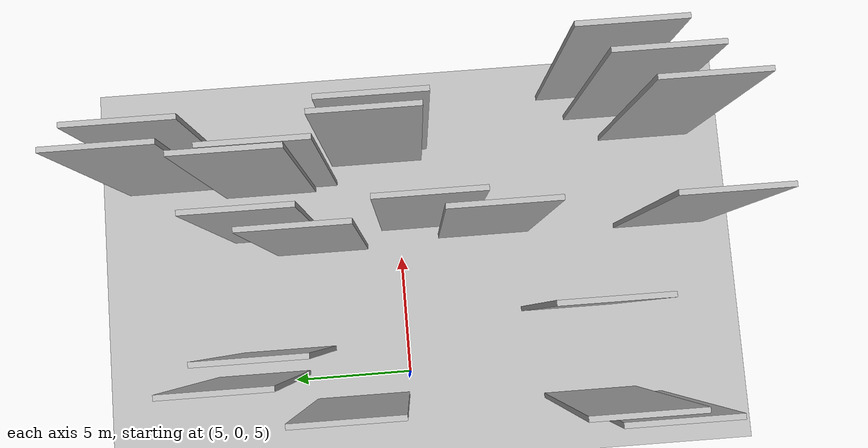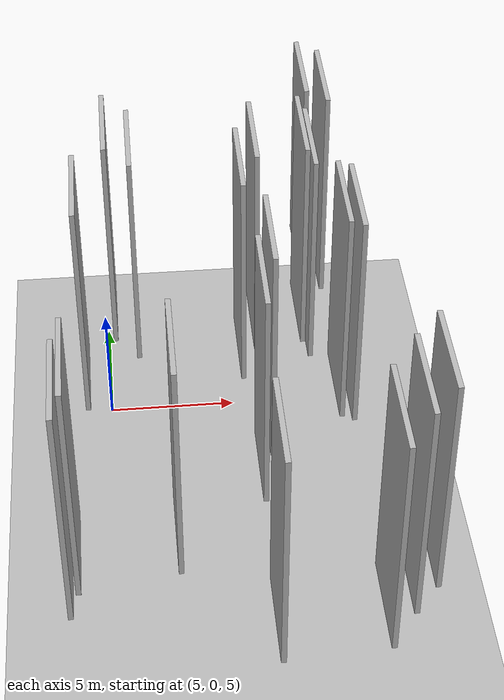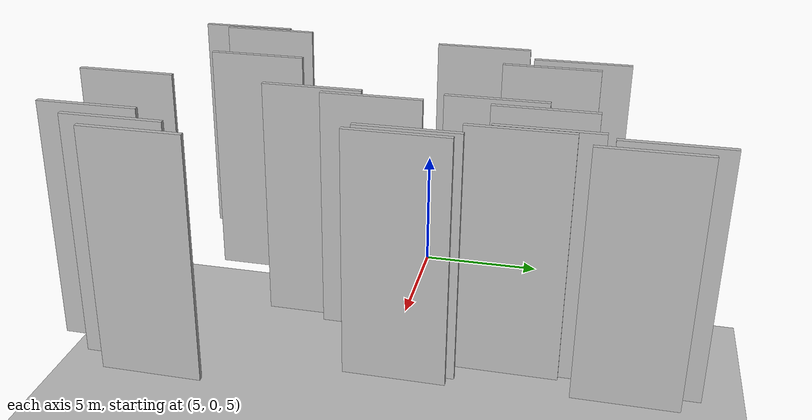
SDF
<?xml version="1.0" encoding="utf-8"?>

<sdf version="1.6">

   <world name="default">

      <gui fullscreen="0">

         <camera name="user_camera">

            <pose>-15 0 4.57585 0 0 0</pose>

            <view_controller>orbit</view_controller>

         </camera>

      </gui>

      <scene>

         <sky>

           <clouds>

             <speed>12</speed>

           </clouds>

         </sky>

         <ambient>0.4 0.4 0.4 1</ambient>

         <background>0.7 0.7 0.7 1</background>

         <shadows>1</shadows>

      </scene>

      <gravity>0 0 -9.8066</gravity>

      <magnetic_field>6e-06 2.3e-05 -4.2e-05</magnetic_field>

      <physics default="0" name="default_physics" type="ode">

         <ode>

            <solver>

               <type>quick</type>

               <iters>10</iters>

               <sor>1.0</sor>

               <use_dynamic_moi_rescaling>0</use_dynamic_moi_rescaling>

            </solver>

            <constraints>

               <cfm>0</cfm>

               <erp>0.2</erp>

               <contact_max_correcting_vel>100</contact_max_correcting_vel>

               <contact_surface_layer>0.001</contact_surface_layer>

            </constraints>

         </ode>

         <max_step_size>0.004</max_step_size>

         <real_time_factor>1</real_time_factor>

         <real_time_update_rate>250</real_time_update_rate>

      </physics>

      <light name="sun" type="directional">

         <cast_shadows>1</cast_shadows>

         <pose>0 0 10 0 0 0</pose>

         <diffuse>0.8 0.8 0.8 1</diffuse>

         <specular>0.2 0.2 0.2 1</specular>

         <attenuation>

            <range>1000</range>

            <constant>0.9</constant>

            <linear>0.01</linear>

            <quadratic>0.001</quadratic>

         </attenuation>

         <direction>-0.5 0.1 -0.9</direction>

      </light>

      <include>

         <name>ground_plane_1</name>

         <uri>model://HANNAS_ground_plane</uri>

         <pose>0 0 0  0 0 0</pose>

      </include>

      <include>

         <name>ground_plane_2</name>

         <uri>model://HANNAS_ground_plane</uri>

         <pose>100 0 0  0 0 0</pose>

      </include>

      <model name="HANNAS_wall_1">

         <static>1</static>

         <pose frame="">13.5607 4.6395 5.0 0.000000 0.000000 1.570796</pose>

         <link name="link">

            <pose frame="">0 0 5.00 0 0 0</pose>

            <collision name="collision">

               <geometry>

                  <box>

                     <size>4.00 0.2 10.00</size>

                  </box>

               </geometry>

               <max_contacts>10</max_contacts>

               <surface>

                  <contact>

                     <ode/>

                  </contact>

                  <bounce/>

                  <friction>

                     <torsional>

                        <ode/>

                     </torsional>

                     <ode/>

                  </friction>

               </surface>

            </collision>

            <visual name="visual">

               <cast_shadows>0</cast_shadows>

               <geometry>

                  <box>

                     <size>4.00 0.2 10.00</size>

                  </box>

               </geometry>

               <material>

                  <script>

                     <uri>model://HANNAS_wall/materials/scripts</uri>

                     <uri>model://HANNAS_wall/materials/textures</uri>

                     <name>vrc/HANNAS_wall</name>

                  </script>

               </material>

            </visual>

            <self_collide>0</self_collide>

            <enable_wind>0</enable_wind>

            <kinematic>0</kinematic>

         </link>

      </model>

      <model name="HANNAS_wall_2">

         <static>1</static>

         <pose frame="">13.7890 9.8942 5.0 0.000000 0.000000 1.570796</pose>

         <link name="link">

            <pose frame="">0 0 5.00 0 0 0</pose>

            <collision name="collision">

               <geometry>

                  <box>

                     <size>4.00 0.2 10.00</size>

                  </box>

               </geometry>

               <max_contacts>10</max_contacts>

               <surface>

                  <contact>

                     <ode/>

                  </contact>

                  <bounce/>

                  <friction>

                     <torsional>

                        <ode/>

                     </torsional>

                     <ode/>

                  </friction>

               </surface>

            </collision>

            <visual name="visual">

               <cast_shadows>0</cast_shadows>

               <geometry>

                  <box>

                     <size>4.00 0.2 10.00</size>

                  </box>

               </geometry>

               <material>

                  <script>

                     <uri>model://HANNAS_wall/materials/scripts</uri>

                     <uri>model://HANNAS_wall/materials/textures</uri>

                     <name>vrc/HANNAS_wall</name>

                  </script>

               </material>

            </visual>

            <self_collide>0</self_collide>

            <enable_wind>0</enable_wind>

            <kinematic>0</kinematic>

         </link>

      </model>

      <model name="HANNAS_wall_3">

         <static>1</static>

         <pose frame="">7.3495 -7.0868 5.0 0.000000 0.000000 1.570796</pose>

         <link name="link">

            <pose frame="">0 0 5.00 0 0 0</pose>

            <collision name="collision">

               <geometry>

                  <box>

                     <size>4.00 0.2 10.00</size>

                  </box>

               </geometry>

               <max_contacts>10</max_contacts>

               <surface>

                  <contact>

                     <ode/>

                  </contact>

                  <bounce/>

                  <friction>

                     <torsional>

                        <ode/>

                     </torsional>

                     <ode/>

                  </friction>

               </surface>

            </collision>

            <visual name="visual">

               <cast_shadows>0</cast_shadows>

               <geometry>

                  <box>

                     <size>4.00 0.2 10.00</size>

                  </box>

               </geometry>

               <material>

                  <script>

                     <uri>model://HANNAS_wall/materials/scripts</uri>

                     <uri>model://HANNAS_wall/materials/textures</uri>

                     <name>vrc/HANNAS_wall</name>

                  </script>

               </material>

            </visual>

            <self_collide>0</self_collide>

            <enable_wind>0</enable_wind>

            <kinematic>0</kinematic>

         </link>

      </model>

      <model name="HANNAS_wall_4">

         <static>1</static>

         <pose frame="">4.0203 2.0928 5.0 0.000000 0.000000 1.570796</pose>

         <link name="link">

            <pose frame="">0 0 5.00 0 0 0</pose>

            <collision name="collision">

               <geometry>

                  <box>

                     <size>4.00 0.2 10.00</size>

                  </box>

               </geometry>

               <max_contacts>10</max_contacts>

               <surface>

                  <contact>

                     <ode/>

                  </contact>

                  <bounce/>

                  <friction>

                     <torsional>

                        <ode/>

                     </torsional>

                     <ode/>

                  </friction>

               </surface>

            </collision>

            <visual name="visual">

               <cast_shadows>0</cast_shadows>

               <geometry>

                  <box>

                     <size>4.00 0.2 10.00</size>

                  </box>

               </geometry>

               <material>

                  <script>

                     <uri>model://HANNAS_wall/materials/scripts</uri>

                     <uri>model://HANNAS_wall/materials/textures</uri>

                     <name>vrc/HANNAS_wall</name>

                  </script>

               </material>

            </visual>

            <self_collide>0</self_collide>

            <enable_wind>0</enable_wind>

            <kinematic>0</kinematic>

         </link>

      </model>

      <model name="HANNAS_wall_5">

         <static>1</static>

         <pose frame="">10.5948 3.4581 5.0 0.000000 0.000000 1.570796</pose>

         <link name="link">

            <pose frame="">0 0 5.00 0 0 0</pose>

            <collision name="collision">

               <geometry>

                  <box>

                     <size>4.00 0.2 10.00</size>

                  </box>

               </geometry>

               <max_contacts>10</max_contacts>

               <surface>

                  <contact>

                     <ode/>

                  </contact>

                  <bounce/>

                  <friction>

                     <torsional>

                        <ode/>

                     </torsional>

                     <ode/>

                  </friction>

               </surface>

            </collision>

            <visual name="visual">

               <cast_shadows>0</cast_shadows>

               <geometry>

                  <box>

                     <size>4.00 0.2 10.00</size>

                  </box>

               </geometry>

               <material>

                  <script>

                     <uri>model://HANNAS_wall/materials/scripts</uri>

                     <uri>model://HANNAS_wall/materials/textures</uri>

                     <name>vrc/HANNAS_wall</name>

                  </script>

               </material>

            </visual>

            <self_collide>0</self_collide>

            <enable_wind>0</enable_wind>

            <kinematic>0</kinematic>

         </link>

      </model>

      <model name="HANNAS_wall_6">

         <static>1</static>

         <pose frame="">11.3721 -1.1995 5.0 0.000000 0.000000 1.570796</pose>

         <link name="link">

            <pose frame="">0 0 5.00 0 0 0</pose>

            <collision name="collision">

               <geometry>

                  <box>

                     <size>4.00 0.2 10.00</size>

                  </box>

               </geometry>

               <max_contacts>10</max_contacts>

               <surface>

                  <contact>

                     <ode/>

                  </contact>

                  <bounce/>

                  <friction>

                     <torsional>

                        <ode/>

                     </torsional>

                     <ode/>

                  </friction>

               </surface>

            </collision>

            <visual name="visual">

               <cast_shadows>0</cast_shadows>

               <geometry>

                  <box>

                     <size>4.00 0.2 10.00</size>

                  </box>

               </geometry>

               <material>

                  <script>

                     <uri>model://HANNAS_wall/materials/scripts</uri>

                     <uri>model://HANNAS_wall/materials/textures</uri>

                     <name>vrc/HANNAS_wall</name>

                  </script>

               </material>

            </visual>

            <self_collide>0</self_collide>

            <enable_wind>0</enable_wind>

            <kinematic>0</kinematic>

         </link>

      </model>

      <model name="HANNAS_wall_7">

         <static>1</static>

         <pose frame="">5.2757 6.3581 5.0 0.000000 0.000000 1.570796</pose>

         <link name="link">

            <pose frame="">0 0 5.00 0 0 0</pose>

            <collision name="collision">

               <geometry>

                  <box>

                     <size>4.00 0.2 10.00</size>

                  </box>

               </geometry>

               <max_contacts>10</max_contacts>

               <surface>

                  <contact>

                     <ode/>

                  </contact>

                  <bounce/>

                  <friction>

                     <torsional>

                        <ode/>

                     </torsional>

                     <ode/>

                  </friction>

               </surface>

            </collision>

            <visual name="visual">

               <cast_shadows>0</cast_shadows>

               <geometry>

                  <box>

                     <size>4.00 0.2 10.00</size>

                  </box>

               </geometry>

               <material>

                  <script>

                     <uri>model://HANNAS_wall/materials/scripts</uri>

                     <uri>model://HANNAS_wall/materials/textures</uri>

                     <name>vrc/HANNAS_wall</name>

                  </script>

               </material>

            </visual>

            <self_collide>0</self_collide>

            <enable_wind>0</enable_wind>

            <kinematic>0</kinematic>

         </link>

      </model>

      <model name="HANNAS_wall_8">

         <static>1</static>

         <pose frame="">16.7662 -8.5645 5.0 0.000000 0.000000 1.570796</pose>

         <link name="link">

            <pose frame="">0 0 5.00 0 0 0</pose>

            <collision name="collision">

               <geometry>

                  <box>

                     <size>4.00 0.2 10.00</size>

                  </box>

               </geometry>

               <max_contacts>10</max_contacts>

               <surface>

                  <contact>

                     <ode/>

                  </contact>

                  <bounce/>

                  <friction>

                     <torsional>

                        <ode/>

                     </torsional>

                     <ode/>

                  </friction>

               </surface>

            </collision>

            <visual name="visual">

               <cast_shadows>0</cast_shadows>

               <geometry>

                  <box>

                     <size>4.00 0.2 10.00</size>

                  </box>

               </geometry>

               <material>

                  <script>

                     <uri>model://HANNAS_wall/materials/scripts</uri>

                     <uri>model://HANNAS_wall/materials/textures</uri>

                     <name>vrc/HANNAS_wall</name>

                  </script>

               </material>

            </visual>

            <self_collide>0</self_collide>

            <enable_wind>0</enable_wind>

            <kinematic>0</kinematic>

         </link>

      </model>

      <model name="HANNAS_wall_9">

         <static>1</static>

         <pose frame="">14.5878 9.1472 5.0 0.000000 0.000000 1.570796</pose>

         <link name="link">

            <pose frame="">0 0 5.00 0 0 0</pose>

            <collision name="collision">

               <geometry>

                  <box>

                     <size>4.00 0.2 10.00</size>

                  </box>

               </geometry>

               <max_contacts>10</max_contacts>

               <surface>

                  <contact>

                     <ode/>

                  </contact>

                  <bounce/>

                  <friction>

                     <torsional>

                        <ode/>

                     </torsional>

                     <ode/>

                  </friction>

               </surface>

            </collision>

            <visual name="visual">

               <cast_shadows>0</cast_shadows>

               <geometry>

                  <box>

                     <size>4.00 0.2 10.00</size>

                  </box>

               </geometry>

               <material>

                  <script>

                     <uri>model://HANNAS_wall/materials/scripts</uri>

                     <uri>model://HANNAS_wall/materials/textures</uri>

                     <name>vrc/HANNAS_wall</name>

                  </script>

               </material>

            </visual>

            <self_collide>0</self_collide>

            <enable_wind>0</enable_wind>

            <kinematic>0</kinematic>

         </link>

      </model>

      <model name="HANNAS_wall_10">

         <static>1</static>

         <pose frame="">13.3426 5.6097 5.0 0.000000 0.000000 1.570796</pose>

         <link name="link">

            <pose frame="">0 0 5.00 0 0 0</pose>

            <collision name="collision">

               <geometry>

                  <box>

                     <size>4.00 0.2 10.00</size>

                  </box>

               </geometry>

               <max_contacts>10</max_contacts>

               <surface>

                  <contact>

                     <ode/>

                  </contact>

                  <bounce/>

                  <friction>

                     <torsional>

                        <ode/>

                     </torsional>

                     <ode/>

                  </friction>

               </surface>

            </collision>

            <visual name="visual">

               <cast_shadows>0</cast_shadows>

               <geometry>

                  <box>

                     <size>4.00 0.2 10.00</size>

                  </box>

               </geometry>

               <material>

                  <script>

                     <uri>model://HANNAS_wall/materials/scripts</uri>

                     <uri>model://HANNAS_wall/materials/textures</uri>

                     <name>vrc/HANNAS_wall</name>

                  </script>

               </material>

            </visual>

            <self_collide>0</self_collide>

            <enable_wind>0</enable_wind>

            <kinematic>0</kinematic>

         </link>

      </model>

      <model name="HANNAS_wall_11">

         <static>1</static>

         <pose frame="">14.4274 0.8035 5.0 0.000000 0.000000 1.570796</pose>

         <link name="link">

            <pose frame="">0 0 5.00 0 0 0</pose>

            <collision name="collision">

               <geometry>

                  <box>

                     <size>4.00 0.2 10.00</size>

                  </box>

               </geometry>

               <max_contacts>10</max_contacts>

               <surface>

                  <contact>

                     <ode/>

                  </contact>

                  <bounce/>

                  <friction>

                     <torsional>

                        <ode/>

                     </torsional>

                     <ode/>

                  </friction>

               </surface>

            </collision>

            <visual name="visual">

               <cast_shadows>0</cast_shadows>

               <geometry>

                  <box>

                     <size>4.00 0.2 10.00</size>

                  </box>

               </geometry>

               <material>

                  <script>

                     <uri>model://HANNAS_wall/materials/scripts</uri>

                     <uri>model://HANNAS_wall/materials/textures</uri>

                     <name>vrc/HANNAS_wall</name>

                  </script>

               </material>

            </visual>

            <self_collide>0</self_collide>

            <enable_wind>0</enable_wind>

            <kinematic>0</kinematic>

         </link>

      </model>

      <model name="HANNAS_wall_12">

         <static>1</static>

         <pose frame="">10.8517 -3.6834 5.0 0.000000 0.000000 1.570796</pose>

         <link name="link">

            <pose frame="">0 0 5.00 0 0 0</pose>

            <collision name="collision">

               <geometry>

                  <box>

                     <size>4.00 0.2 10.00</size>

                  </box>

               </geometry>

               <max_contacts>10</max_contacts>

               <surface>

                  <contact>

                     <ode/>

                  </contact>

                  <bounce/>

                  <friction>

                     <torsional>

                        <ode/>

                     </torsional>

                     <ode/>

                  </friction>

               </surface>

            </collision>

            <visual name="visual">

               <cast_shadows>0</cast_shadows>

               <geometry>

                  <box>

                     <size>4.00 0.2 10.00</size>

                  </box>

               </geometry>

               <material>

                  <script>

                     <uri>model://HANNAS_wall/materials/scripts</uri>

                     <uri>model://HANNAS_wall/materials/textures</uri>

                     <name>vrc/HANNAS_wall</name>

                  </script>

               </material>

            </visual>

            <self_collide>0</self_collide>

            <enable_wind>0</enable_wind>

            <kinematic>0</kinematic>

         </link>

      </model>

      <model name="HANNAS_wall_13">

         <static>1</static>

         <pose frame="">10.7106 -11.4935 5.0 0.000000 0.000000 1.570796</pose>

         <link name="link">

            <pose frame="">0 0 5.00 0 0 0</pose>

            <collision name="collision">

               <geometry>

                  <box>

                     <size>4.00 0.2 10.00</size>

                  </box>

               </geometry>

               <max_contacts>10</max_contacts>

               <surface>

                  <contact>

                     <ode/>

                  </contact>

                  <bounce/>

                  <friction>

                     <torsional>

                        <ode/>

                     </torsional>

                     <ode/>

                  </friction>

               </surface>

            </collision>

            <visual name="visual">

               <cast_shadows>0</cast_shadows>

               <geometry>

                  <box>

                     <size>4.00 0.2 10.00</size>

                  </box>

               </geometry>

               <material>

                  <script>

                     <uri>model://HANNAS_wall/materials/scripts</uri>

                     <uri>model://HANNAS_wall/materials/textures</uri>

                     <name>vrc/HANNAS_wall</name>

                  </script>

               </material>

            </visual>

            <self_collide>0</self_collide>

            <enable_wind>0</enable_wind>

            <kinematic>0</kinematic>

         </link>

      </model>

      <model name="HANNAS_wall_14">

         <static>1</static>

         <pose frame="">14.7085 -11.2051 5.0 0.000000 0.000000 1.570796</pose>

         <link name="link">

            <pose frame="">0 0 5.00 0 0 0</pose>

            <collision name="collision">

               <geometry>

                  <box>

                     <size>4.00 0.2 10.00</size>

                  </box>

               </geometry>

               <max_contacts>10</max_contacts>

               <surface>

                  <contact>

                     <ode/>

                  </contact>

                  <bounce/>

                  <friction>

                     <torsional>

                        <ode/>

                     </torsional>

                     <ode/>

                  </friction>

               </surface>

            </collision>

            <visual name="visual">

               <cast_shadows>0</cast_shadows>

               <geometry>

                  <box>

                     <size>4.00 0.2 10.00</size>

                  </box>

               </geometry>

               <material>

                  <script>

                     <uri>model://HANNAS_wall/materials/scripts</uri>

                     <uri>model://HANNAS_wall/materials/textures</uri>

                     <name>vrc/HANNAS_wall</name>

                  </script>

               </material>

            </visual>

            <self_collide>0</self_collide>

            <enable_wind>0</enable_wind>

            <kinematic>0</kinematic>

         </link>

      </model>

      <model name="HANNAS_wall_15">

         <static>1</static>

         <pose frame="">15.7704 -9.7218 5.0 0.000000 0.000000 1.570796</pose>

         <link name="link">

            <pose frame="">0 0 5.00 0 0 0</pose>

            <collision name="collision">

               <geometry>

                  <box>

                     <size>4.00 0.2 10.00</size>

                  </box>

               </geometry>

               <max_contacts>10</max_contacts>

               <surface>

                  <contact>

                     <ode/>

                  </contact>

                  <bounce/>

                  <friction>

                     <torsional>

                        <ode/>

                     </torsional>

                     <ode/>

                  </friction>

               </surface>

            </collision>

            <visual name="visual">

               <cast_shadows>0</cast_shadows>

               <geometry>

                  <box>

                     <size>4.00 0.2 10.00</size>

                  </box>

               </geometry>

               <material>

                  <script>

                     <uri>model://HANNAS_wall/materials/scripts</uri>

                     <uri>model://HANNAS_wall/materials/textures</uri>

                     <name>vrc/HANNAS_wall</name>

                  </script>

               </material>

            </visual>

            <self_collide>0</self_collide>

            <enable_wind>0</enable_wind>

            <kinematic>0</kinematic>

         </link>

      </model>

      <model name="HANNAS_wall_16">

         <static>1</static>

         <pose frame="">14.9127 0.5328 5.0 0.000000 0.000000 1.570796</pose>

         <link name="link">

            <pose frame="">0 0 5.00 0 0 0</pose>

            <collision name="collision">

               <geometry>

                  <box>

                     <size>4.00 0.2 10.00</size>

                  </box>

               </geometry>

               <max_contacts>10</max_contacts>

               <surface>

                  <contact>

                     <ode/>

                  </contact>

                  <bounce/>

                  <friction>

                     <torsional>

                        <ode/>

                     </torsional>

                     <ode/>

                  </friction>

               </surface>

            </collision>

            <visual name="visual">

               <cast_shadows>0</cast_shadows>

               <geometry>

                  <box>

                     <size>4.00 0.2 10.00</size>

                  </box>

               </geometry>

               <material>

                  <script>

                     <uri>model://HANNAS_wall/materials/scripts</uri>

                     <uri>model://HANNAS_wall/materials/textures</uri>

                     <name>vrc/HANNAS_wall</name>

                  </script>

               </material>

            </visual>

            <self_collide>0</self_collide>

            <enable_wind>0</enable_wind>

            <kinematic>0</kinematic>

         </link>

      </model>

      <model name="HANNAS_wall_17">

         <static>1</static>

         <pose frame="">3.2291 -8.8997 5.0 0.000000 0.000000 1.570796</pose>

         <link name="link">

            <pose frame="">0 0 5.00 0 0 0</pose>

            <collision name="collision">

               <geometry>

                  <box>

                     <size>4.00 0.2 10.00</size>

                  </box>

               </geometry>

               <max_contacts>10</max_contacts>

               <surface>

                  <contact>

                     <ode/>

                  </contact>

                  <bounce/>

                  <friction>

                     <torsional>

                        <ode/>

                     </torsional>

                     <ode/>

                  </friction>

               </surface>

            </collision>

            <visual name="visual">

               <cast_shadows>0</cast_shadows>

               <geometry>

                  <box>

                     <size>4.00 0.2 10.00</size>

                  </box>

               </geometry>

               <material>

                  <script>

                     <uri>model://HANNAS_wall/materials/scripts</uri>

                     <uri>model://HANNAS_wall/materials/textures</uri>

                     <name>vrc/HANNAS_wall</name>

                  </script>

               </material>

            </visual>

            <self_collide>0</self_collide>

            <enable_wind>0</enable_wind>

            <kinematic>0</kinematic>

         </link>

      </model>

      <model name="HANNAS_wall_18">

         <static>1</static>

         <pose frame="">11.3044 5.3229 5.0 0.000000 0.000000 1.570796</pose>

         <link name="link">

            <pose frame="">0 0 5.00 0 0 0</pose>

            <collision name="collision">

               <geometry>

                  <box>

                     <size>4.00 0.2 10.00</size>

                  </box>

               </geometry>

               <max_contacts>10</max_contacts>

               <surface>

                  <contact>

                     <ode/>

                  </contact>

                  <bounce/>

                  <friction>

                     <torsional>

                        <ode/>

                     </torsional>

                     <ode/>

                  </friction>

               </surface>

            </collision>

            <visual name="visual">

               <cast_shadows>0</cast_shadows>

               <geometry>

                  <box>

                     <size>4.00 0.2 10.00</size>

                  </box>

               </geometry>

               <material>

                  <script>

                     <uri>model://HANNAS_wall/materials/scripts</uri>

                     <uri>model://HANNAS_wall/materials/textures</uri>

                     <name>vrc/HANNAS_wall</name>

                  </script>

               </material>

            </visual>

            <self_collide>0</self_collide>

            <enable_wind>0</enable_wind>

            <kinematic>0</kinematic>

         </link>

      </model>

      <model name="HANNAS_wall_19">

         <static>1</static>

         <pose frame="">3.5184 -7.7719 5.0 0.000000 0.000000 1.570796</pose>

         <link name="link">

            <pose frame="">0 0 5.00 0 0 0</pose>

            <collision name="collision">

               <geometry>

                  <box>

                     <size>4.00 0.2 10.00</size>

                  </box>

               </geometry>

               <max_contacts>10</max_contacts>

               <surface>

                  <contact>

                     <ode/>

                  </contact>

                  <bounce/>

                  <friction>

                     <torsional>

                        <ode/>

                     </torsional>

                     <ode/>

                  </friction>

               </surface>

            </collision>

            <visual name="visual">

               <cast_shadows>0</cast_shadows>

               <geometry>

                  <box>

                     <size>4.00 0.2 10.00</size>

                  </box>

               </geometry>

               <material>

                  <script>

                     <uri>model://HANNAS_wall/materials/scripts</uri>

                     <uri>model://HANNAS_wall/materials/textures</uri>

                     <name>vrc/HANNAS_wall</name>

                  </script>

               </material>

            </visual>

            <self_collide>0</self_collide>

            <enable_wind>0</enable_wind>

            <kinematic>0</kinematic>

         </link>

      </model>

      <model name="HANNAS_wall_20">

         <static>1</static>

         <pose frame="">6.2541 5.1603 5.0 0.000000 0.000000 1.570796</pose>

         <link name="link">

            <pose frame="">0 0 5.00 0 0 0</pose>

            <collision name="collision">

               <geometry>

                  <box>

                     <size>4.00 0.2 10.00</size>

                  </box>

               </geometry>

               <max_contacts>10</max_contacts>

               <surface>

                  <contact>

                     <ode/>

                  </contact>

                  <bounce/>

                  <friction>

                     <torsional>

                        <ode/>

                     </torsional>

                     <ode/>

                  </friction>

               </surface>

            </collision>

            <visual name="visual">

               <cast_shadows>0</cast_shadows>

               <geometry>

                  <box>

                     <size>4.00 0.2 10.00</size>

                  </box>

               </geometry>

               <material>

                  <script>

                     <uri>model://HANNAS_wall/materials/scripts</uri>

                     <uri>model://HANNAS_wall/materials/textures</uri>

                     <name>vrc/HANNAS_wall</name>

                  </script>

               </material>

            </visual>

            <self_collide>0</self_collide>

            <enable_wind>0</enable_wind>

            <kinematic>0</kinematic>

         </link>

      </model>

   </world>

</sdf>

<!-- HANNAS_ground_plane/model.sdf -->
<sdf version="1.4">
<model name="HANNAS_ground_plane">
  <static>true</static>
    <link name="link">
      <collision name="collision">
        <geometry>
          <plane>
            <normal>0 0 1</normal>
            <size>1000 1000</size>
          </plane>
        </geometry>
        <surface>
          <friction>
            <ode>
              <mu>100</mu>
              <mu2>50</mu2>
            </ode>
          </friction>
        </surface>
      </collision>
      <visual name="visual">
        <cast_shadows>false</cast_shadows>
        <geometry>
          <plane>
            <normal>0 0 1</normal>
            <size>1000 1000</size>
          </plane>
        </geometry>
        <material>
          <script>
            <uri>model://HANNAS_ground_plane/materials/scripts/HANNAS_ground_plane.material</uri>
	    <uri>model://HANNAS_ground_plane/materials/textures</uri>
            <name>HANNASGroundPlane/Image</name>
          </script>
        </material>
      </visual>
    </link>
  </model>
</sdf>
